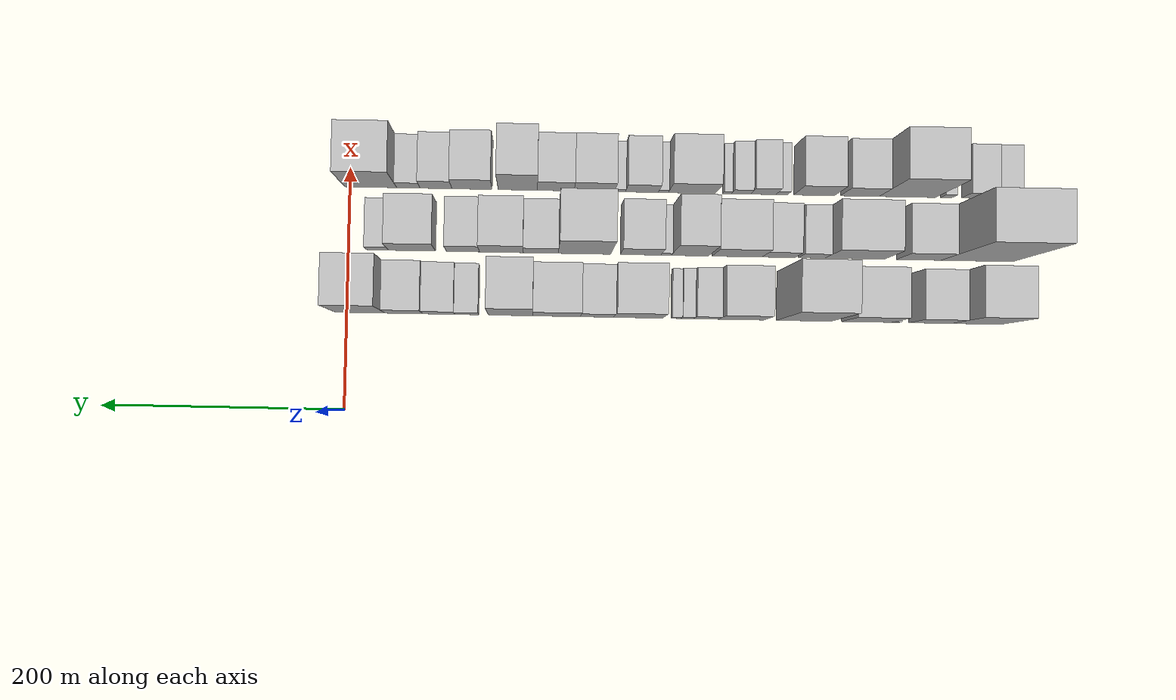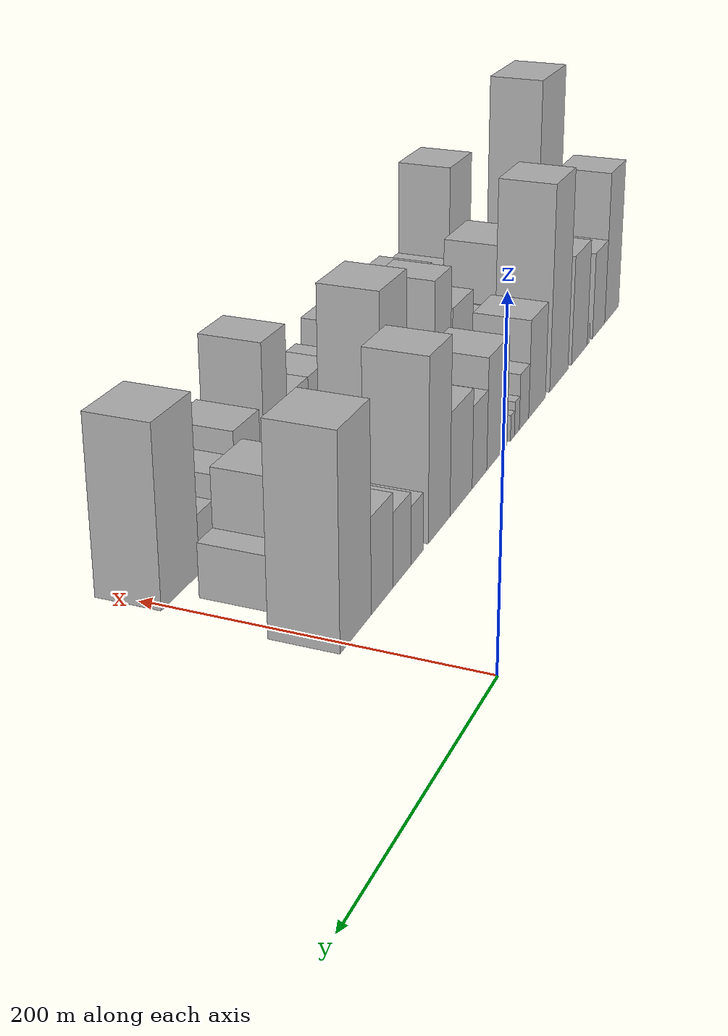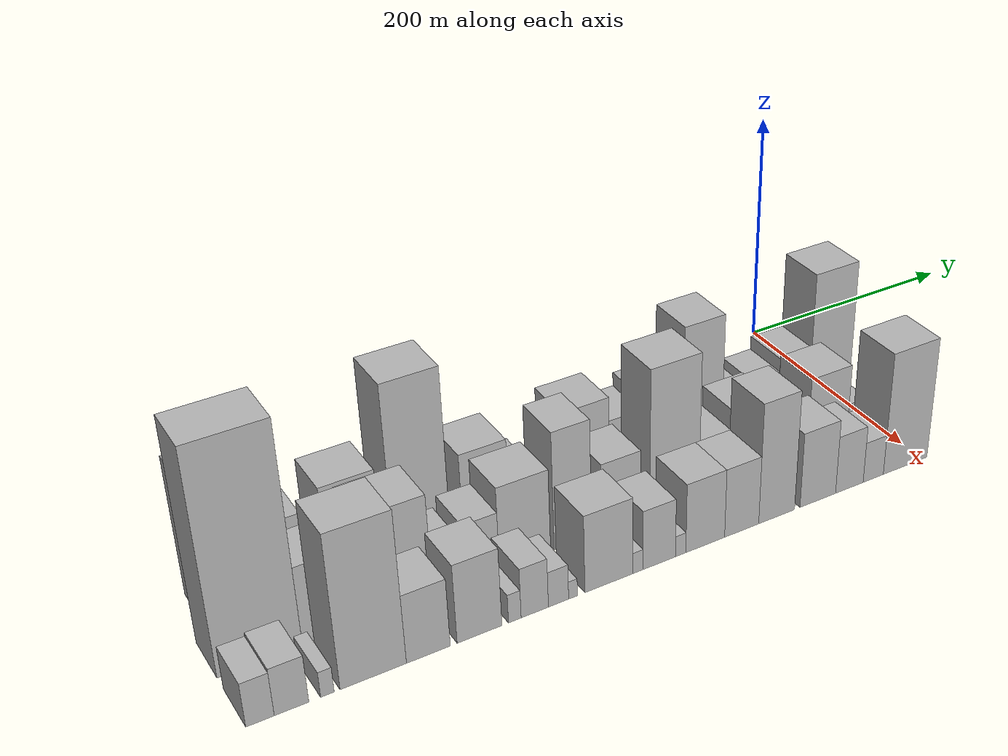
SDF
<sdf version="1.6">
 <world name="default">
  <model name="building_1">
   <static>1</static>
   <pose>100.0000 -517.6219 0 0.000000 0.000000 0.000000</pose>
   <link name="link">
    <pose>0 0 58.50 0 0 0</pose>
    <collision name="collision"><geometry><box><size>40.0000 40.7561 117.0000</size></box></geometry></collision>
    <visual name="visual">
     <cast_shadows>0</cast_shadows>
     <geometry><box><size>40.0000 40.7561 117.0000</size></box></geometry>
     <material>
      <script>
       <uri>model://HANNAS_wall/materials/scripts</uri>
       <uri>model://HANNAS_wall/materials/textures</uri>
       <name>vrc/HANNAS_wall</name>
      </script>
     </material>
    </visual>
   </link>
  </model>
  <model name="building_2">
   <static>1</static>
   <pose>100.0000 -479.9347 0 0.000000 0.000000 0.000000</pose>
   <link name="link">
    <pose>0 0 33.00 0 0 0</pose>
    <collision name="collision"><geometry><box><size>40.0000 34.6183 66.0000</size></box></geometry></collision>
    <visual name="visual">
     <cast_shadows>0</cast_shadows>
     <geometry><box><size>40.0000 34.6183 66.0000</size></box></geometry>
     <material>
      <script>
       <uri>model://HANNAS_wall/materials/scripts</uri>
       <uri>model://HANNAS_wall/materials/textures</uri>
       <name>vrc/HANNAS_wall</name>
      </script>
     </material>
    </visual>
   </link>
  </model>
  <model name="building_3">
   <static>1</static>
   <pose>100.0000 -451.4299 0 0.000000 0.000000 0.000000</pose>
   <link name="link">
    <pose>0 0 7.50 0 0 0</pose>
    <collision name="collision"><geometry><box><size>40.0000 6.3911 15.0000</size></box></geometry></collision>
    <visual name="visual">
     <cast_shadows>0</cast_shadows>
     <geometry><box><size>40.0000 6.3911 15.0000</size></box></geometry>
     <material>
      <script>
       <uri>model://HANNAS_wall/materials/scripts</uri>
       <uri>model://HANNAS_wall/materials/textures</uri>
       <name>vrc/HANNAS_wall</name>
      </script>
     </material>
    </visual>
   </link>
  </model>
  <model name="building_4">
   <static>1</static>
   <pose>100.0000 -427.6770 0 0.000000 0.000000 0.000000</pose>
   <link name="link">
    <pose>0 0 40.50 0 0 0</pose>
    <collision name="collision"><geometry><box><size>40.0000 41.1148 81.0000</size></box></geometry></collision>
    <visual name="visual">
     <cast_shadows>0</cast_shadows>
     <geometry><box><size>40.0000 41.1148 81.0000</size></box></geometry>
     <material>
      <script>
       <uri>model://HANNAS_wall/materials/scripts</uri>
       <uri>model://HANNAS_wall/materials/textures</uri>
       <name>vrc/HANNAS_wall</name>
      </script>
     </material>
    </visual>
   </link>
  </model>
  <model name="building_5">
   <static>1</static>
   <pose>100.0000 -375.7939 0 0.000000 0.000000 0.000000</pose>
   <link name="link">
    <pose>0 0 73.50 0 0 0</pose>
    <collision name="collision"><geometry><box><size>40.0000 44.6514 147.0000</size></box></geometry></collision>
    <visual name="visual">
     <cast_shadows>0</cast_shadows>
     <geometry><box><size>40.0000 44.6514 147.0000</size></box></geometry>
     <material>
      <script>
       <uri>model://HANNAS_wall/materials/scripts</uri>
       <uri>model://HANNAS_wall/materials/textures</uri>
       <name>vrc/HANNAS_wall</name>
      </script>
     </material>
    </visual>
   </link>
  </model>
  <model name="building_6">
   <static>1</static>
   <pose>100.0000 -324.5157 0 0.000000 0.000000 0.000000</pose>
   <link name="link">
    <pose>0 0 34.50 0 0 0</pose>
    <collision name="collision"><geometry><box><size>40.0000 37.9049 69.0000</size></box></geometry></collision>
    <visual name="visual">
     <cast_shadows>0</cast_shadows>
     <geometry><box><size>40.0000 37.9049 69.0000</size></box></geometry>
     <material>
      <script>
       <uri>model://HANNAS_wall/materials/scripts</uri>
       <uri>model://HANNAS_wall/materials/textures</uri>
       <name>vrc/HANNAS_wall</name>
      </script>
     </material>
    </visual>
   </link>
  </model>
  <model name="building_7">
   <static>1</static>
   <pose>100.0000 -295.3833 0 0.000000 0.000000 0.000000</pose>
   <link name="link">
    <pose>0 0 19.50 0 0 0</pose>
    <collision name="collision"><geometry><box><size>40.0000 20.3600 39.0000</size></box></geometry></collision>
    <visual name="visual">
     <cast_shadows>0</cast_shadows>
     <geometry><box><size>40.0000 20.3600 39.0000</size></box></geometry>
     <material>
      <script>
       <uri>model://HANNAS_wall/materials/scripts</uri>
       <uri>model://HANNAS_wall/materials/textures</uri>
       <name>vrc/HANNAS_wall</name>
      </script>
     </material>
    </visual>
   </link>
  </model>
  <model name="building_8">
   <static>1</static>
   <pose>100.0000 -280.0929 0 0.000000 0.000000 0.000000</pose>
   <link name="link">
    <pose>0 0 12.00 0 0 0</pose>
    <collision name="collision"><geometry><box><size>40.0000 10.2207 24.0000</size></box></geometry></collision>
    <visual name="visual">
     <cast_shadows>0</cast_shadows>
     <geometry><box><size>40.0000 10.2207 24.0000</size></box></geometry>
     <material>
      <script>
       <uri>model://HANNAS_wall/materials/scripts</uri>
       <uri>model://HANNAS_wall/materials/textures</uri>
       <name>vrc/HANNAS_wall</name>
      </script>
     </material>
    </visual>
   </link>
  </model>
  <model name="building_9">
   <static>1</static>
   <pose>100.0000 -270.7997 0 0.000000 0.000000 0.000000</pose>
   <link name="link">
    <pose>0 0 9.00 0 0 0</pose>
    <collision name="collision"><geometry><box><size>40.0000 8.3657 18.0000</size></box></geometry></collision>
    <visual name="visual">
     <cast_shadows>0</cast_shadows>
     <geometry><box><size>40.0000 8.3657 18.0000</size></box></geometry>
     <material>
      <script>
       <uri>model://HANNAS_wall/materials/scripts</uri>
       <uri>model://HANNAS_wall/materials/textures</uri>
       <name>vrc/HANNAS_wall</name>
      </script>
     </material>
    </visual>
   </link>
  </model>
  <model name="building_10">
   <static>1</static>
   <pose>100.0000 -239.5225 0 0.000000 0.000000 0.000000</pose>
   <link name="link">
    <pose>0 0 37.50 0 0 0</pose>
    <collision name="collision"><geometry><box><size>40.0000 40.1889 75.0000</size></box></geometry></collision>
    <visual name="visual">
     <cast_shadows>0</cast_shadows>
     <geometry><box><size>40.0000 40.1889 75.0000</size></box></geometry>
     <material>
      <script>
       <uri>model://HANNAS_wall/materials/scripts</uri>
       <uri>model://HANNAS_wall/materials/textures</uri>
       <name>vrc/HANNAS_wall</name>
      </script>
     </material>
    </visual>
   </link>
  </model>
  <model name="building_11">
   <static>1</static>
   <pose>100.0000 -205.6912 0 0.000000 0.000000 0.000000</pose>
   <link name="link">
    <pose>0 0 27.00 0 0 0</pose>
    <collision name="collision"><geometry><box><size>40.0000 27.4736 54.0000</size></box></geometry></collision>
    <visual name="visual">
     <cast_shadows>0</cast_shadows>
     <geometry><box><size>40.0000 27.4736 54.0000</size></box></geometry>
     <material>
      <script>
       <uri>model://HANNAS_wall/materials/scripts</uri>
       <uri>model://HANNAS_wall/materials/textures</uri>
       <name>vrc/HANNAS_wall</name>
      </script>
     </material>
    </visual>
   </link>
  </model>
  <model name="building_12">
   <static>1</static>
   <pose>100.0000 -172.3648 0 0.000000 0.000000 0.000000</pose>
   <link name="link">
    <pose>0 0 33.00 0 0 0</pose>
    <collision name="collision"><geometry><box><size>40.0000 39.1793 66.0000</size></box></geometry></collision>
    <visual name="visual">
     <cast_shadows>0</cast_shadows>
     <geometry><box><size>40.0000 39.1793 66.0000</size></box></geometry>
     <material>
      <script>
       <uri>model://HANNAS_wall/materials/scripts</uri>
       <uri>model://HANNAS_wall/materials/textures</uri>
       <name>vrc/HANNAS_wall</name>
      </script>
     </material>
    </visual>
   </link>
  </model>
  <model name="building_13">
   <static>1</static>
   <pose>100.0000 -134.6445 0 0.000000 0.000000 0.000000</pose>
   <link name="link">
    <pose>0 0 57.00 0 0 0</pose>
    <collision name="collision"><geometry><box><size>40.0000 36.2613 114.0000</size></box></geometry></collision>
    <visual name="visual">
     <cast_shadows>0</cast_shadows>
     <geometry><box><size>40.0000 36.2613 114.0000</size></box></geometry>
     <material>
      <script>
       <uri>model://HANNAS_wall/materials/scripts</uri>
       <uri>model://HANNAS_wall/materials/textures</uri>
       <name>vrc/HANNAS_wall</name>
      </script>
     </material>
    </visual>
   </link>
  </model>
  <model name="building_14">
   <static>1</static>
   <pose>100.0000 -98.7660 0 0.000000 0.000000 0.000000</pose>
   <link name="link">
    <pose>0 0 18.00 0 0 0</pose>
    <collision name="collision"><geometry><box><size>40.0000 19.4958 36.0000</size></box></geometry></collision>
    <visual name="visual">
     <cast_shadows>0</cast_shadows>
     <geometry><box><size>40.0000 19.4958 36.0000</size></box></geometry>
     <material>
      <script>
       <uri>model://HANNAS_wall/materials/scripts</uri>
       <uri>model://HANNAS_wall/materials/textures</uri>
       <name>vrc/HANNAS_wall</name>
      </script>
     </material>
    </visual>
   </link>
  </model>
  <model name="building_15">
   <static>1</static>
   <pose>100.0000 -75.7453 0 0.000000 0.000000 0.000000</pose>
   <link name="link">
    <pose>0 0 22.50 0 0 0</pose>
    <collision name="collision"><geometry><box><size>40.0000 26.5456 45.0000</size></box></geometry></collision>
    <visual name="visual">
     <cast_shadows>0</cast_shadows>
     <geometry><box><size>40.0000 26.5456 45.0000</size></box></geometry>
     <material>
      <script>
       <uri>model://HANNAS_wall/materials/scripts</uri>
       <uri>model://HANNAS_wall/materials/textures</uri>
       <name>vrc/HANNAS_wall</name>
      </script>
     </material>
    </visual>
   </link>
  </model>
  <model name="building_16">
   <static>1</static>
   <pose>100.0000 -46.9878 0 0.000000 0.000000 0.000000</pose>
   <link name="link">
    <pose>0 0 28.50 0 0 0</pose>
    <collision name="collision"><geometry><box><size>40.0000 30.9693 57.0000</size></box></geometry></collision>
    <visual name="visual">
     <cast_shadows>0</cast_shadows>
     <geometry><box><size>40.0000 30.9693 57.0000</size></box></geometry>
     <material>
      <script>
       <uri>model://HANNAS_wall/materials/scripts</uri>
       <uri>model://HANNAS_wall/materials/textures</uri>
       <name>vrc/HANNAS_wall</name>
      </script>
     </material>
    </visual>
   </link>
  </model>
  <model name="building_17">
   <static>1</static>
   <pose>100.0000 -10.8562 0 0.000000 0.000000 0.000000</pose>
   <link name="link">
    <pose>0 0 61.50 0 0 0</pose>
    <collision name="collision"><geometry><box><size>40.0000 41.2940 123.0000</size></box></geometry></collision>
    <visual name="visual">
     <cast_shadows>0</cast_shadows>
     <geometry><box><size>40.0000 41.2940 123.0000</size></box></geometry>
     <material>
      <script>
       <uri>model://HANNAS_wall/materials/scripts</uri>
       <uri>model://HANNAS_wall/materials/textures</uri>
       <name>vrc/HANNAS_wall</name>
      </script>
     </material>
    </visual>
   </link>
  </model>
  <model name="building_34">
   <static>1</static>
   <pose>152.0000 -518.4679 0 0.000000 0.000000 0.000000</pose>
   <link name="link">
    <pose>0 0 91.50 0 0 0</pose>
    <collision name="collision"><geometry><box><size>40.0000 59.0643 183.0000</size></box></geometry></collision>
    <visual name="visual">
     <cast_shadows>0</cast_shadows>
     <geometry><box><size>40.0000 59.0643 183.0000</size></box></geometry>
     <material>
      <script>
       <uri>model://HANNAS_wall/materials/scripts</uri>
       <uri>model://HANNAS_wall/materials/textures</uri>
       <name>vrc/HANNAS_wall</name>
      </script>
     </material>
    </visual>
   </link>
  </model>
  <model name="building_35">
   <static>1</static>
   <pose>152.0000 -470.4753 0 0.000000 0.000000 0.000000</pose>
   <link name="link">
    <pose>0 0 33.00 0 0 0</pose>
    <collision name="collision"><geometry><box><size>40.0000 36.9209 66.0000</size></box></geometry></collision>
    <visual name="visual">
     <cast_shadows>0</cast_shadows>
     <geometry><box><size>40.0000 36.9209 66.0000</size></box></geometry>
     <material>
      <script>
       <uri>model://HANNAS_wall/materials/scripts</uri>
       <uri>model://HANNAS_wall/materials/textures</uri>
       <name>vrc/HANNAS_wall</name>
      </script>
     </material>
    </visual>
   </link>
  </model>
  <model name="building_36">
   <static>1</static>
   <pose>152.0000 -417.4977 0 0.000000 0.000000 0.000000</pose>
   <link name="link">
    <pose>0 0 43.50 0 0 0</pose>
    <collision name="collision"><geometry><box><size>40.0000 49.0343 87.0000</size></box></geometry></collision>
    <visual name="visual">
     <cast_shadows>0</cast_shadows>
     <geometry><box><size>40.0000 49.0343 87.0000</size></box></geometry>
     <material>
      <script>
       <uri>model://HANNAS_wall/materials/scripts</uri>
       <uri>model://HANNAS_wall/materials/textures</uri>
       <name>vrc/HANNAS_wall</name>
      </script>
     </material>
    </visual>
   </link>
  </model>
  <model name="building_37">
   <static>1</static>
   <pose>152.0000 -382.1001 0 0.000000 0.000000 0.000000</pose>
   <link name="link">
    <pose>0 0 21.00 0 0 0</pose>
    <collision name="collision"><geometry><box><size>40.0000 21.7610 42.0000</size></box></geometry></collision>
    <visual name="visual">
     <cast_shadows>0</cast_shadows>
     <geometry><box><size>40.0000 21.7610 42.0000</size></box></geometry>
     <material>
      <script>
       <uri>model://HANNAS_wall/materials/scripts</uri>
       <uri>model://HANNAS_wall/materials/textures</uri>
       <name>vrc/HANNAS_wall</name>
      </script>
     </material>
    </visual>
   </link>
  </model>
  <model name="building_38">
   <static>1</static>
   <pose>152.0000 -354.6735 0 0.000000 0.000000 0.000000</pose>
   <link name="link">
    <pose>0 0 25.50 0 0 0</pose>
    <collision name="collision"><geometry><box><size>40.0000 27.0921 51.0000</size></box></geometry></collision>
    <visual name="visual">
     <cast_shadows>0</cast_shadows>
     <geometry><box><size>40.0000 27.0921 51.0000</size></box></geometry>
     <material>
      <script>
       <uri>model://HANNAS_wall/materials/scripts</uri>
       <uri>model://HANNAS_wall/materials/textures</uri>
       <name>vrc/HANNAS_wall</name>
      </script>
     </material>
    </visual>
   </link>
  </model>
  <model name="building_39">
   <static>1</static>
   <pose>152.0000 -320.5675 0 0.000000 0.000000 0.000000</pose>
   <link name="link">
    <pose>0 0 36.00 0 0 0</pose>
    <collision name="collision"><geometry><box><size>40.0000 41.1198 72.0000</size></box></geometry></collision>
    <visual name="visual">
     <cast_shadows>0</cast_shadows>
     <geometry><box><size>40.0000 41.1198 72.0000</size></box></geometry>
     <material>
      <script>
       <uri>model://HANNAS_wall/materials/scripts</uri>
       <uri>model://HANNAS_wall/materials/textures</uri>
       <name>vrc/HANNAS_wall</name>
      </script>
     </material>
    </visual>
   </link>
  </model>
  <model name="building_40">
   <static>1</static>
   <pose>152.0000 -281.5517 0 0.000000 0.000000 0.000000</pose>
   <link name="link">
    <pose>0 0 51.00 0 0 0</pose>
    <collision name="collision"><geometry><box><size>40.0000 30.9117 102.0000</size></box></geometry></collision>
    <visual name="visual">
     <cast_shadows>0</cast_shadows>
     <geometry><box><size>40.0000 30.9117 102.0000</size></box></geometry>
     <material>
      <script>
       <uri>model://HANNAS_wall/materials/scripts</uri>
       <uri>model://HANNAS_wall/materials/textures</uri>
       <name>vrc/HANNAS_wall</name>
      </script>
     </material>
    </visual>
   </link>
  </model>
  <model name="building_41">
   <static>1</static>
   <pose>152.0000 -261.7792 0 0.000000 0.000000 0.000000</pose>
   <link name="link">
    <pose>0 0 10.50 0 0 0</pose>
    <collision name="collision"><geometry><box><size>40.0000 8.6333 21.0000</size></box></geometry></collision>
    <visual name="visual">
     <cast_shadows>0</cast_shadows>
     <geometry><box><size>40.0000 8.6333 21.0000</size></box></geometry>
     <material>
      <script>
       <uri>model://HANNAS_wall/materials/scripts</uri>
       <uri>model://HANNAS_wall/materials/textures</uri>
       <name>vrc/HANNAS_wall</name>
      </script>
     </material>
    </visual>
   </link>
  </model>
  <model name="building_42">
   <static>1</static>
   <pose>152.0000 -240.7744 0 0.000000 0.000000 0.000000</pose>
   <link name="link">
    <pose>0 0 30.00 0 0 0</pose>
    <collision name="collision"><geometry><box><size>40.0000 33.3762 60.0000</size></box></geometry></collision>
    <visual name="visual">
     <cast_shadows>0</cast_shadows>
     <geometry><box><size>40.0000 33.3762 60.0000</size></box></geometry>
     <material>
      <script>
       <uri>model://HANNAS_wall/materials/scripts</uri>
       <uri>model://HANNAS_wall/materials/textures</uri>
       <name>vrc/HANNAS_wall</name>
      </script>
     </material>
    </visual>
   </link>
  </model>
  <model name="building_43">
   <static>1</static>
   <pose>152.0000 -194.4252 0 0.000000 0.000000 0.000000</pose>
   <link name="link">
    <pose>0 0 63.00 0 0 0</pose>
    <collision name="collision"><geometry><box><size>40.0000 43.3221 126.0000</size></box></geometry></collision>
    <visual name="visual">
     <cast_shadows>0</cast_shadows>
     <geometry><box><size>40.0000 43.3221 126.0000</size></box></geometry>
     <material>
      <script>
       <uri>model://HANNAS_wall/materials/scripts</uri>
       <uri>model://HANNAS_wall/materials/textures</uri>
       <name>vrc/HANNAS_wall</name>
      </script>
     </material>
    </visual>
   </link>
  </model>
  <model name="building_44">
   <static>1</static>
   <pose>152.0000 -158.3745 0 0.000000 0.000000 0.000000</pose>
   <link name="link">
    <pose>0 0 24.00 0 0 0</pose>
    <collision name="collision"><geometry><box><size>40.0000 28.7794 48.0000</size></box></geometry></collision>
    <visual name="visual">
     <cast_shadows>0</cast_shadows>
     <geometry><box><size>40.0000 28.7794 48.0000</size></box></geometry>
     <material>
      <script>
       <uri>model://HANNAS_wall/materials/scripts</uri>
       <uri>model://HANNAS_wall/materials/textures</uri>
       <name>vrc/HANNAS_wall</name>
      </script>
     </material>
    </visual>
   </link>
  </model>
  <model name="building_45">
   <static>1</static>
   <pose>152.0000 -125.9204 0 0.000000 0.000000 0.000000</pose>
   <link name="link">
    <pose>0 0 33.00 0 0 0</pose>
    <collision name="collision"><geometry><box><size>40.0000 36.1287 66.0000</size></box></geometry></collision>
    <visual name="visual">
     <cast_shadows>0</cast_shadows>
     <geometry><box><size>40.0000 36.1287 66.0000</size></box></geometry>
     <material>
      <script>
       <uri>model://HANNAS_wall/materials/scripts</uri>
       <uri>model://HANNAS_wall/materials/textures</uri>
       <name>vrc/HANNAS_wall</name>
      </script>
     </material>
    </visual>
   </link>
  </model>
  <model name="building_46">
   <static>1</static>
   <pose>152.0000 -94.2431 0 0.000000 0.000000 0.000000</pose>
   <link name="link">
    <pose>0 0 27.00 0 0 0</pose>
    <collision name="collision"><geometry><box><size>40.0000 27.2260 54.0000</size></box></geometry></collision>
    <visual name="visual">
     <cast_shadows>0</cast_shadows>
     <geometry><box><size>40.0000 27.2260 54.0000</size></box></geometry>
     <material>
      <script>
       <uri>model://HANNAS_wall/materials/scripts</uri>
       <uri>model://HANNAS_wall/materials/textures</uri>
       <name>vrc/HANNAS_wall</name>
      </script>
     </material>
    </visual>
   </link>
  </model>
  <model name="building_47">
   <static>1</static>
   <pose>152.0000 -52.3429 0 0.000000 0.000000 0.000000</pose>
   <link name="link">
    <pose>0 0 34.50 0 0 0</pose>
    <collision name="collision"><geometry><box><size>40.0000 38.5744 69.0000</size></box></geometry></collision>
    <visual name="visual">
     <cast_shadows>0</cast_shadows>
     <geometry><box><size>40.0000 38.5744 69.0000</size></box></geometry>
     <material>
      <script>
       <uri>model://HANNAS_wall/materials/scripts</uri>
       <uri>model://HANNAS_wall/materials/textures</uri>
       <name>vrc/HANNAS_wall</name>
      </script>
     </material>
    </visual>
   </link>
  </model>
  <model name="building_48">
   <static>1</static>
   <pose>152.0000 -23.9914 0 0.000000 0.000000 0.000000</pose>
   <link name="link">
    <pose>0 0 16.50 0 0 0</pose>
    <collision name="collision"><geometry><box><size>40.0000 18.1285 33.0000</size></box></geometry></collision>
    <visual name="visual">
     <cast_shadows>0</cast_shadows>
     <geometry><box><size>40.0000 18.1285 33.0000</size></box></geometry>
     <material>
      <script>
       <uri>model://HANNAS_wall/materials/scripts</uri>
       <uri>model://HANNAS_wall/materials/textures</uri>
       <name>vrc/HANNAS_wall</name>
      </script>
     </material>
    </visual>
   </link>
  </model>
  <model name="building_68">
   <static>1</static>
   <pose>204.0000 -538.5362 0 0.000000 0.000000 0.000000</pose>
   <link name="link">
    <pose>0 0 18.00 0 0 0</pose>
    <collision name="collision"><geometry><box><size>40.0000 18.9276 36.0000</size></box></geometry></collision>
    <visual name="visual">
     <cast_shadows>0</cast_shadows>
     <geometry><box><size>40.0000 18.9276 36.0000</size></box></geometry>
     <material>
      <script>
       <uri>model://HANNAS_wall/materials/scripts</uri>
       <uri>model://HANNAS_wall/materials/textures</uri>
       <name>vrc/HANNAS_wall</name>
      </script>
     </material>
    </visual>
   </link>
  </model>
  <model name="building_69">
   <static>1</static>
   <pose>204.0000 -517.4451 0 0.000000 0.000000 0.000000</pose>
   <link name="link">
    <pose>0 0 19.50 0 0 0</pose>
    <collision name="collision"><geometry><box><size>40.0000 23.2546 39.0000</size></box></geometry></collision>
    <visual name="visual">
     <cast_shadows>0</cast_shadows>
     <geometry><box><size>40.0000 23.2546 39.0000</size></box></geometry>
     <material>
      <script>
       <uri>model://HANNAS_wall/materials/scripts</uri>
       <uri>model://HANNAS_wall/materials/textures</uri>
       <name>vrc/HANNAS_wall</name>
      </script>
     </material>
    </visual>
   </link>
  </model>
  <model name="building_70">
   <static>1</static>
   <pose>204.0000 -493.1419 0 0.000000 0.000000 0.000000</pose>
   <link name="link">
    <pose>0 0 10.50 0 0 0</pose>
    <collision name="collision"><geometry><box><size>40.0000 9.3518 21.0000</size></box></geometry></collision>
    <visual name="visual">
     <cast_shadows>0</cast_shadows>
     <geometry><box><size>40.0000 9.3518 21.0000</size></box></geometry>
     <material>
      <script>
       <uri>model://HANNAS_wall/materials/scripts</uri>
       <uri>model://HANNAS_wall/materials/textures</uri>
       <name>vrc/HANNAS_wall</name>
      </script>
     </material>
    </visual>
   </link>
  </model>
  <model name="building_71">
   <static>1</static>
   <pose>204.0000 -461.0504 0 0.000000 0.000000 0.000000</pose>
   <link name="link">
    <pose>0 0 63.00 0 0 0</pose>
    <collision name="collision"><geometry><box><size>40.0000 46.8312 126.0000</size></box></geometry></collision>
    <visual name="visual">
     <cast_shadows>0</cast_shadows>
     <geometry><box><size>40.0000 46.8312 126.0000</size></box></geometry>
     <material>
      <script>
       <uri>model://HANNAS_wall/materials/scripts</uri>
       <uri>model://HANNAS_wall/materials/textures</uri>
       <name>vrc/HANNAS_wall</name>
      </script>
     </material>
    </visual>
   </link>
  </model>
  <model name="building_72">
   <static>1</static>
   <pose>204.0000 -421.6327 0 0.000000 0.000000 0.000000</pose>
   <link name="link">
    <pose>0 0 28.50 0 0 0</pose>
    <collision name="collision"><geometry><box><size>40.0000 32.0041 57.0000</size></box></geometry></collision>
    <visual name="visual">
     <cast_shadows>0</cast_shadows>
     <geometry><box><size>40.0000 32.0041 57.0000</size></box></geometry>
     <material>
      <script>
       <uri>model://HANNAS_wall/materials/scripts</uri>
       <uri>model://HANNAS_wall/materials/textures</uri>
       <name>vrc/HANNAS_wall</name>
      </script>
     </material>
    </visual>
   </link>
  </model>
  <model name="building_73">
   <static>1</static>
   <pose>204.0000 -383.7965 0 0.000000 0.000000 0.000000</pose>
   <link name="link">
    <pose>0 0 33.00 0 0 0</pose>
    <collision name="collision"><geometry><box><size>40.0000 33.6683 66.0000</size></box></geometry></collision>
    <visual name="visual">
     <cast_shadows>0</cast_shadows>
     <geometry><box><size>40.0000 33.6683 66.0000</size></box></geometry>
     <material>
      <script>
       <uri>model://HANNAS_wall/materials/scripts</uri>
       <uri>model://HANNAS_wall/materials/textures</uri>
       <name>vrc/HANNAS_wall</name>
      </script>
     </material>
    </visual>
   </link>
  </model>
  <model name="building_74">
   <static>1</static>
   <pose>204.0000 -357.1084 0 0.000000 0.000000 0.000000</pose>
   <link name="link">
    <pose>0 0 12.00 0 0 0</pose>
    <collision name="collision"><geometry><box><size>40.0000 9.7079 24.0000</size></box></geometry></collision>
    <visual name="visual">
     <cast_shadows>0</cast_shadows>
     <geometry><box><size>40.0000 9.7079 24.0000</size></box></geometry>
     <material>
      <script>
       <uri>model://HANNAS_wall/materials/scripts</uri>
       <uri>model://HANNAS_wall/materials/textures</uri>
       <name>vrc/HANNAS_wall</name>
      </script>
     </material>
    </visual>
   </link>
  </model>
  <model name="building_75">
   <static>1</static>
   <pose>204.0000 -341.6462 0 0.000000 0.000000 0.000000</pose>
   <link name="link">
    <pose>0 0 21.00 0 0 0</pose>
    <collision name="collision"><geometry><box><size>40.0000 21.2166 42.0000</size></box></geometry></collision>
    <visual name="visual">
     <cast_shadows>0</cast_shadows>
     <geometry><box><size>40.0000 21.2166 42.0000</size></box></geometry>
     <material>
      <script>
       <uri>model://HANNAS_wall/materials/scripts</uri>
       <uri>model://HANNAS_wall/materials/textures</uri>
       <name>vrc/HANNAS_wall</name>
      </script>
     </material>
    </visual>
   </link>
  </model>
  <model name="building_76">
   <static>1</static>
   <pose>204.0000 -323.0877 0 0.000000 0.000000 0.000000</pose>
   <link name="link">
    <pose>0 0 15.00 0 0 0</pose>
    <collision name="collision"><geometry><box><size>40.0000 15.9003 30.0000</size></box></geometry></collision>
    <visual name="visual">
     <cast_shadows>0</cast_shadows>
     <geometry><box><size>40.0000 15.9003 30.0000</size></box></geometry>
     <material>
      <script>
       <uri>model://HANNAS_wall/materials/scripts</uri>
       <uri>model://HANNAS_wall/materials/textures</uri>
       <name>vrc/HANNAS_wall</name>
      </script>
     </material>
    </visual>
   </link>
  </model>
  <model name="building_77">
   <static>1</static>
   <pose>204.0000 -311.6352 0 0.000000 0.000000 0.000000</pose>
   <link name="link">
    <pose>0 0 7.50 0 0 0</pose>
    <collision name="collision"><geometry><box><size>40.0000 7.0048 15.0000</size></box></geometry></collision>
    <visual name="visual">
     <cast_shadows>0</cast_shadows>
     <geometry><box><size>40.0000 7.0048 15.0000</size></box></geometry>
     <material>
      <script>
       <uri>model://HANNAS_wall/materials/scripts</uri>
       <uri>model://HANNAS_wall/materials/textures</uri>
       <name>vrc/HANNAS_wall</name>
      </script>
     </material>
    </visual>
   </link>
  </model>
  <model name="building_78">
   <static>1</static>
   <pose>204.0000 -282.5388 0 0.000000 0.000000 0.000000</pose>
   <link name="link">
    <pose>0 0 33.00 0 0 0</pose>
    <collision name="collision"><geometry><box><size>40.0000 39.1882 66.0000</size></box></geometry></collision>
    <visual name="visual">
     <cast_shadows>0</cast_shadows>
     <geometry><box><size>40.0000 39.1882 66.0000</size></box></geometry>
     <material>
      <script>
       <uri>model://HANNAS_wall/materials/scripts</uri>
       <uri>model://HANNAS_wall/materials/textures</uri>
       <name>vrc/HANNAS_wall</name>
      </script>
     </material>
    </visual>
   </link>
  </model>
  <model name="building_79">
   <static>1</static>
   <pose>204.0000 -258.8142 0 0.000000 0.000000 0.000000</pose>
   <link name="link">
    <pose>0 0 9.00 0 0 0</pose>
    <collision name="collision"><geometry><box><size>40.0000 8.2609 18.0000</size></box></geometry></collision>
    <visual name="visual">
     <cast_shadows>0</cast_shadows>
     <geometry><box><size>40.0000 8.2609 18.0000</size></box></geometry>
     <material>
      <script>
       <uri>model://HANNAS_wall/materials/scripts</uri>
       <uri>model://HANNAS_wall/materials/textures</uri>
       <name>vrc/HANNAS_wall</name>
      </script>
     </material>
    </visual>
   </link>
  </model>
  <model name="building_80">
   <static>1</static>
   <pose>204.0000 -241.0976 0 0.000000 0.000000 0.000000</pose>
   <link name="link">
    <pose>0 0 25.50 0 0 0</pose>
    <collision name="collision"><geometry><box><size>40.0000 27.1722 51.0000</size></box></geometry></collision>
    <visual name="visual">
     <cast_shadows>0</cast_shadows>
     <geometry><box><size>40.0000 27.1722 51.0000</size></box></geometry>
     <material>
      <script>
       <uri>model://HANNAS_wall/materials/scripts</uri>
       <uri>model://HANNAS_wall/materials/textures</uri>
       <name>vrc/HANNAS_wall</name>
      </script>
     </material>
    </visual>
   </link>
  </model>
  <model name="building_81">
   <static>1</static>
   <pose>204.0000 -223.0641 0 0.000000 0.000000 0.000000</pose>
   <link name="link">
    <pose>0 0 9.00 0 0 0</pose>
    <collision name="collision"><geometry><box><size>40.0000 8.8948 18.0000</size></box></geometry></collision>
    <visual name="visual">
     <cast_shadows>0</cast_shadows>
     <geometry><box><size>40.0000 8.8948 18.0000</size></box></geometry>
     <material>
      <script>
       <uri>model://HANNAS_wall/materials/scripts</uri>
       <uri>model://HANNAS_wall/materials/textures</uri>
       <name>vrc/HANNAS_wall</name>
      </script>
     </material>
    </visual>
   </link>
  </model>
  <model name="building_82">
   <static>1</static>
   <pose>204.0000 -201.8276 0 0.000000 0.000000 0.000000</pose>
   <link name="link">
    <pose>0 0 30.00 0 0 0</pose>
    <collision name="collision"><geometry><box><size>40.0000 33.5784 60.0000</size></box></geometry></collision>
    <visual name="visual">
     <cast_shadows>0</cast_shadows>
     <geometry><box><size>40.0000 33.5784 60.0000</size></box></geometry>
     <material>
      <script>
       <uri>model://HANNAS_wall/materials/scripts</uri>
       <uri>model://HANNAS_wall/materials/textures</uri>
       <name>vrc/HANNAS_wall</name>
      </script>
     </material>
    </visual>
   </link>
  </model>
  <model name="building_83">
   <static>1</static>
   <pose>204.0000 -169.9261 0 0.000000 0.000000 0.000000</pose>
   <link name="link">
    <pose>0 0 30.00 0 0 0</pose>
    <collision name="collision"><geometry><box><size>40.0000 30.2246 60.0000</size></box></geometry></collision>
    <visual name="visual">
     <cast_shadows>0</cast_shadows>
     <geometry><box><size>40.0000 30.2246 60.0000</size></box></geometry>
     <material>
      <script>
       <uri>model://HANNAS_wall/materials/scripts</uri>
       <uri>model://HANNAS_wall/materials/textures</uri>
       <name>vrc/HANNAS_wall</name>
      </script>
     </material>
    </visual>
   </link>
  </model>
  <model name="building_84">
   <static>1</static>
   <pose>204.0000 -138.5362 0 0.000000 0.000000 0.000000</pose>
   <link name="link">
    <pose>0 0 52.50 0 0 0</pose>
    <collision name="collision"><geometry><box><size>40.0000 32.5553 105.0000</size></box></geometry></collision>
    <visual name="visual">
     <cast_shadows>0</cast_shadows>
     <geometry><box><size>40.0000 32.5553 105.0000</size></box></geometry>
     <material>
      <script>
       <uri>model://HANNAS_wall/materials/scripts</uri>
       <uri>model://HANNAS_wall/materials/textures</uri>
       <name>vrc/HANNAS_wall</name>
      </script>
     </material>
    </visual>
   </link>
  </model>
  <model name="building_85">
   <static>1</static>
   <pose>204.0000 -100.6782 0 0.000000 0.000000 0.000000</pose>
   <link name="link">
    <pose>0 0 33.00 0 0 0</pose>
    <collision name="collision"><geometry><box><size>40.0000 33.1607 66.0000</size></box></geometry></collision>
    <visual name="visual">
     <cast_shadows>0</cast_shadows>
     <geometry><box><size>40.0000 33.1607 66.0000</size></box></geometry>
     <material>
      <script>
       <uri>model://HANNAS_wall/materials/scripts</uri>
       <uri>model://HANNAS_wall/materials/textures</uri>
       <name>vrc/HANNAS_wall</name>
      </script>
     </material>
    </visual>
   </link>
  </model>
  <model name="building_86">
   <static>1</static>
   <pose>204.0000 -70.9374 0 0.000000 0.000000 0.000000</pose>
   <link name="link">
    <pose>0 0 25.50 0 0 0</pose>
    <collision name="collision"><geometry><box><size>40.0000 26.3209 51.0000</size></box></geometry></collision>
    <visual name="visual">
     <cast_shadows>0</cast_shadows>
     <geometry><box><size>40.0000 26.3209 51.0000</size></box></geometry>
     <material>
      <script>
       <uri>model://HANNAS_wall/materials/scripts</uri>
       <uri>model://HANNAS_wall/materials/textures</uri>
       <name>vrc/HANNAS_wall</name>
      </script>
     </material>
    </visual>
   </link>
  </model>
  <model name="building_87">
   <static>1</static>
   <pose>204.0000 -48.0261 0 0.000000 0.000000 0.000000</pose>
   <link name="link">
    <pose>0 0 18.00 0 0 0</pose>
    <collision name="collision"><geometry><box><size>40.0000 19.5017 36.0000</size></box></geometry></collision>
    <visual name="visual">
     <cast_shadows>0</cast_shadows>
     <geometry><box><size>40.0000 19.5017 36.0000</size></box></geometry>
     <material>
      <script>
       <uri>model://HANNAS_wall/materials/scripts</uri>
       <uri>model://HANNAS_wall/materials/textures</uri>
       <name>vrc/HANNAS_wall</name>
      </script>
     </material>
    </visual>
   </link>
  </model>
  <model name="building_88">
   <static>1</static>
   <pose>204.0000 -16.6942 0 0.000000 0.000000 0.000000</pose>
   <link name="link">
    <pose>0 0 54.00 0 0 0</pose>
    <collision name="collision"><geometry><box><size>40.0000 43.1621 108.0000</size></box></geometry></collision>
    <visual name="visual">
     <cast_shadows>0</cast_shadows>
     <geometry><box><size>40.0000 43.1621 108.0000</size></box></geometry>
     <material>
      <script>
       <uri>model://HANNAS_wall/materials/scripts</uri>
       <uri>model://HANNAS_wall/materials/textures</uri>
       <name>vrc/HANNAS_wall</name>
      </script>
     </material>
    </visual>
   </link>
  </model>
 </world>
</sdf>
